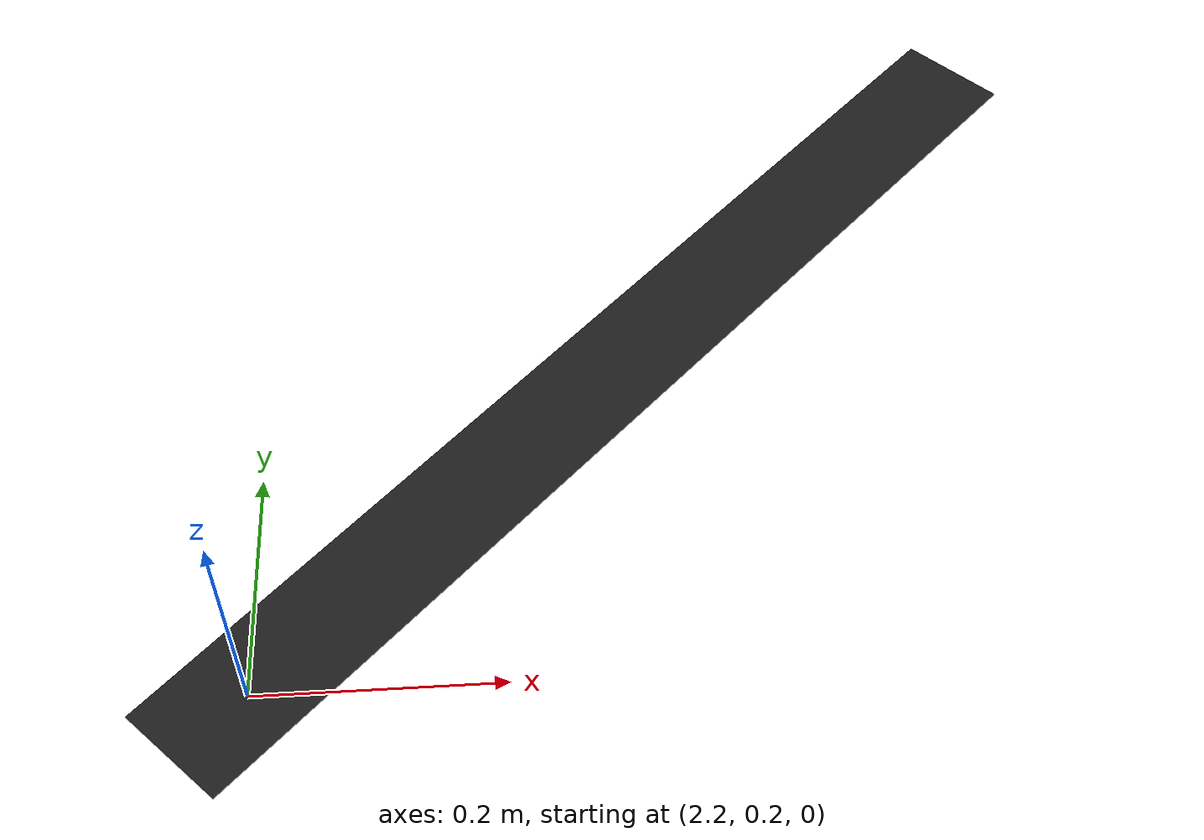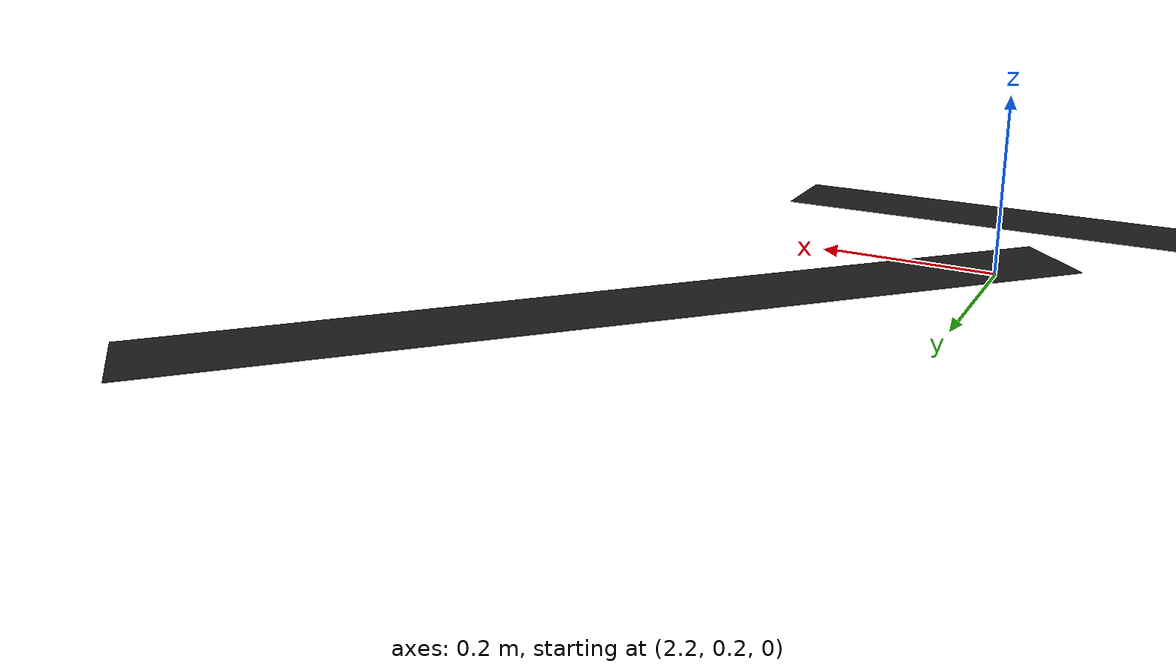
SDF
<?xml version="1.0" ?>
<sdf version="1.7">
  <world name="line_follower_world">

    <include>
      <uri>model://sun</uri>
    </include>

    <include>
      <uri>model://ground_plane</uri>
    </include>

    <!-- 一个简单的黑色线条作为循迹目标 -->
    <model name="line_path">
      <static>true</static>
      <pose>0 0 0.01 0 0 0</pose> <!-- 稍微抬高一点点以避免与地面重合渲染问题 -->
      <link name="line_link">
        <visual name="visual_line">
          <geometry>
            <plane>
                <normal>0 0 1</normal>
                <size>5 0.1</size> <!-- 5米长，0.1米宽的线 -->
            </plane>
          </geometry>
          <material>
            <script>
              <uri>file://media/materials/scripts/gazebo.material</uri>
              <name>Gazebo/Black</name>
            </script>
          </material>
        </visual>
         <collision name="collision_line"> <!-- 可选，如果需要物理交互 -->
          <geometry>
            <plane>
                <normal>0 0 1</normal>
                <size>5 0.1</size>
            </plane>
          </geometry>
        </collision>
      </link>
    </model>

    <!-- 可以使用多个box或cylinder拼接 -->
    <model name="curved_line_segment1">
      <static>true</static>
      <pose>2.5 0.5 0.01 0 0 0.785</pose> <!-- 调整位置和旋转以创建曲线 -->
      <link name="curved_line_link1">
        <visual name="visual_curved_line1">
          <geometry>
            <box><size>1.0 0.1 0.001</size></box>
          </geometry>
          <material>
            <script>
              <uri>file://media/materials/scripts/gazebo.material</uri>
              <name>Gazebo/Black</name>
            </script>
          </material>
        </visual>
      </link>
    </model>

  </world>
</sdf>
